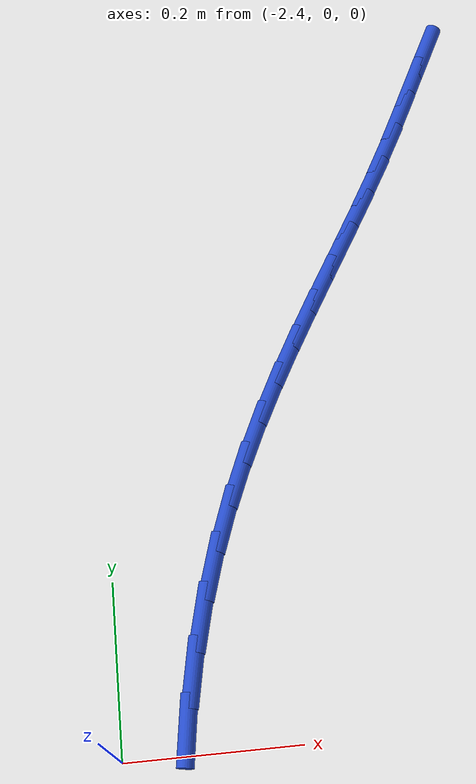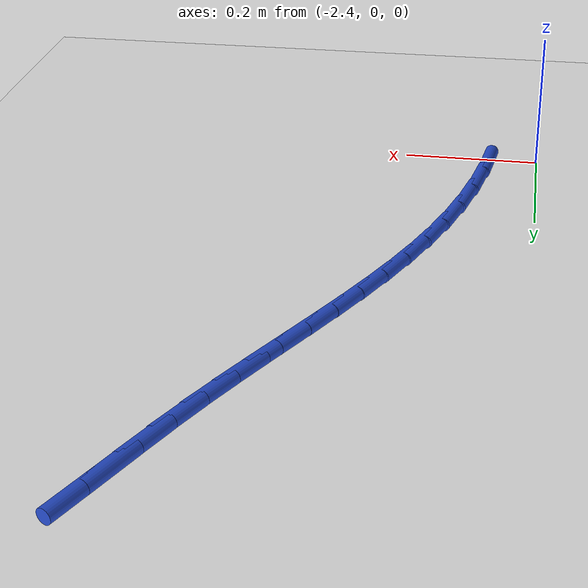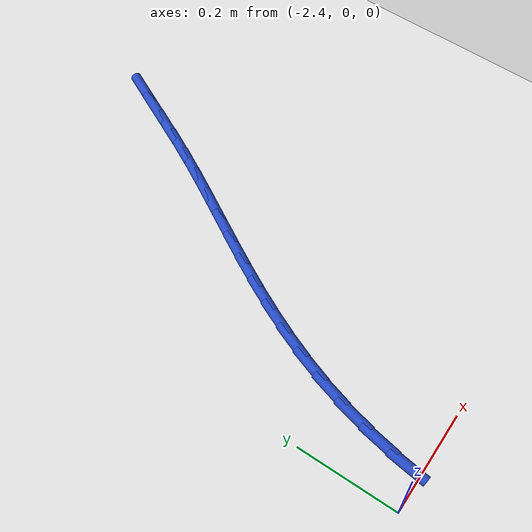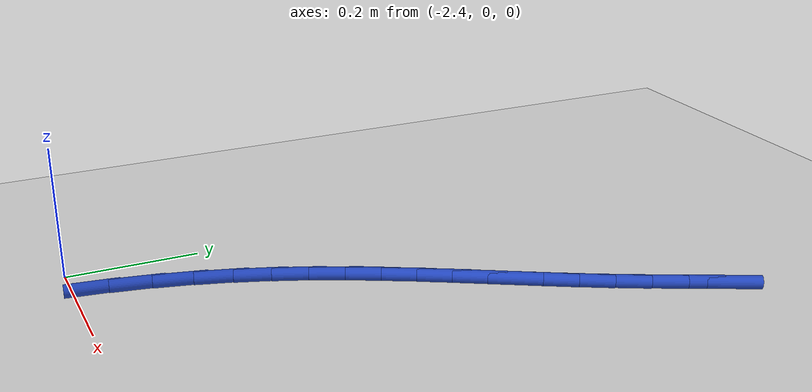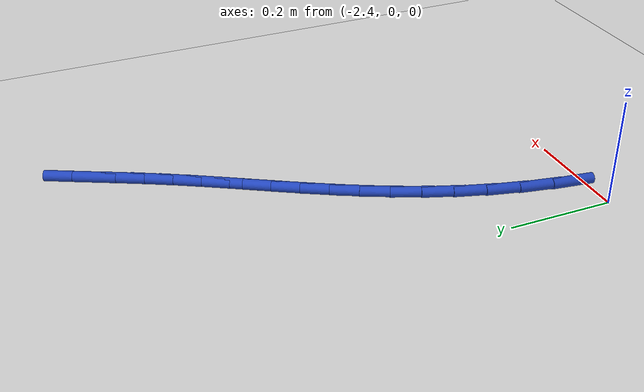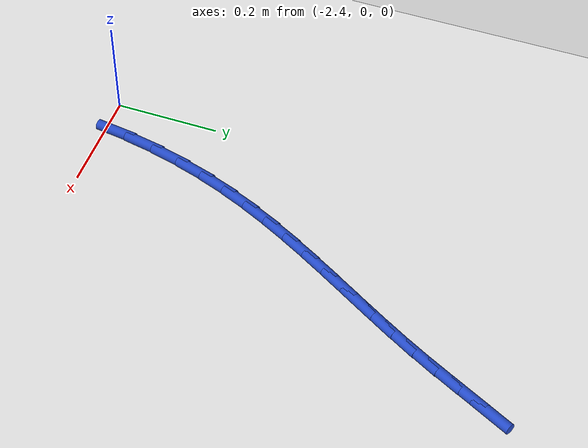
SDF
<sdf version="1.6">
 <world name="default">
  <model name="ground_plane">
   <static>1</static>
   <link name="link">
    <collision name="collision">
     <geometry><plane><normal>0 0 1</normal><size>100 100</size></plane></geometry>
     <surface><friction><ode><mu>100</mu><mu2>50</mu2></ode></friction></surface>
    </collision>
    <visual name="visual">
     <cast_shadows>0</cast_shadows>
     <geometry><plane><normal>0 0 1</normal><size>100 100</size></plane></geometry>
     <material>
      <script><uri>file://media/materials/scripts/gazebo.material</uri><name>Gazebo/WhiteGlow</name></script>
     </material>
    </visual>
   </link>
  </model>
  <model name="line">
   <link name="link_53">
    <pose>-1.951885829891804 0.8665344935591558 0.01 0 1.57 1.1134902627350924</pose>
    <collision name="collision">
     <geometry><cylinder><radius>0.01</radius><length>0.08</length></cylinder></geometry>
    </collision>
    <visual name="visual">
     <material>
      <script><name>Gazebo/Blue</name><uri>file://media/materials/scripts/gazebo.material</uri></script>
     </material>
     <geometry><cylinder><radius>0.01</radius><length>0.08</length></cylinder></geometry>
    </visual>
   </link>
   <link name="link_54">
    <pose>-1.9754103205397266 0.8187300119845221 0.01 0 1.57 1.1170671915449875</pose>
    <collision name="collision">
     <geometry><cylinder><radius>0.01</radius><length>0.08</length></cylinder></geometry>
    </collision>
    <visual name="visual">
     <material>
      <script><name>Gazebo/Blue</name><uri>file://media/materials/scripts/gazebo.material</uri></script>
     </material>
     <geometry><cylinder><radius>0.01</radius><length>0.08</length></cylinder></geometry>
    </visual>
   </link>
   <link name="link_55">
    <pose>-1.9986185281457824 0.7711393140914072 0.01 0 1.57 1.1071290461043983</pose>
    <collision name="collision">
     <geometry><cylinder><radius>0.01</radius><length>0.08</length></cylinder></geometry>
    </collision>
    <visual name="visual">
     <material>
      <script><name>Gazebo/Blue</name><uri>file://media/materials/scripts/gazebo.material</uri></script>
     </material>
     <geometry><cylinder><radius>0.01</radius><length>0.08</length></cylinder></geometry>
    </visual>
   </link>
   <link name="link_56">
    <pose>-2.02211542218024 0.7241478370496097 0.01 0 1.57 1.0846794115029847</pose>
    <collision name="collision">
     <geometry><cylinder><radius>0.01</radius><length>0.08</length></cylinder></geometry>
    </collision>
    <visual name="visual">
     <material>
      <script><name>Gazebo/Blue</name><uri>file://media/materials/scripts/gazebo.material</uri></script>
     </material>
     <geometry><cylinder><radius>0.01</radius><length>0.08</length></cylinder></geometry>
    </visual>
   </link>
   <link name="link_57">
    <pose>-2.046449963591491 0.6780955028823921 0.01 0 1.57 1.062806701525071</pose>
    <collision name="collision">
     <geometry><cylinder><radius>0.01</radius><length>0.08</length></cylinder></geometry>
    </collision>
    <visual name="visual">
     <material>
      <script><name>Gazebo/Blue</name><uri>file://media/materials/scripts/gazebo.material</uri></script>
     </material>
     <geometry><cylinder><radius>0.01</radius><length>0.08</length></cylinder></geometry>
    </visual>
   </link>
   <link name="link_58">
    <pose>-2.0716238381366034 0.6328774921755836 0.01 0 1.57 1.0492954950425308</pose>
    <collision name="collision">
     <geometry><cylinder><radius>0.01</radius><length>0.08</length></cylinder></geometry>
    </collision>
    <visual name="visual">
     <material>
      <script><name>Gazebo/Blue</name><uri>file://media/materials/scripts/gazebo.material</uri></script>
     </material>
     <geometry><cylinder><radius>0.01</radius><length>0.08</length></cylinder></geometry>
    </visual>
   </link>
   <link name="link_59">
    <pose>-2.0973294166298495 0.5881376217140197 0.01 0 1.57 1.0444396385903945</pose>
    <collision name="collision">
     <geometry><cylinder><radius>0.01</radius><length>0.08</length></cylinder></geometry>
    </collision>
    <visual name="visual">
     <material>
      <script><name>Gazebo/Blue</name><uri>file://media/materials/scripts/gazebo.material</uri></script>
     </material>
     <geometry><cylinder><radius>0.01</radius><length>0.08</length></cylinder></geometry>
    </visual>
   </link>
   <link name="link_60">
    <pose>-2.123255566833727 0.5435168615386952 0.01 0 1.57 1.0482805100394543</pose>
    <collision name="collision">
     <geometry><cylinder><radius>0.01</radius><length>0.08</length></cylinder></geometry>
    </collision>
    <visual name="visual">
     <material>
      <script><name>Gazebo/Blue</name><uri>file://media/materials/scripts/gazebo.material</uri></script>
     </material>
     <geometry><cylinder><radius>0.01</radius><length>0.08</length></cylinder></geometry>
    </visual>
   </link>
   <link name="link_61">
    <pose>-2.1490911565107336 0.4986561816906031 0.01 0 1.57 1.060701548714605</pose>
    <collision name="collision">
     <geometry><cylinder><radius>0.01</radius><length>0.08</length></cylinder></geometry>
    </collision>
    <visual name="visual">
     <material>
      <script><name>Gazebo/Blue</name><uri>file://media/materials/scripts/gazebo.material</uri></script>
     </material>
     <geometry><cylinder><radius>0.01</radius><length>0.08</length></cylinder></geometry>
    </visual>
   </link>
   <link name="link_62">
    <pose>-2.174525053423368 0.45319655221073885 0.01 0 1.57 1.0814259967850304</pose>
    <collision name="collision">
     <geometry><cylinder><radius>0.01</radius><length>0.08</length></cylinder></geometry>
    </collision>
    <visual name="visual">
     <material>
      <script><name>Gazebo/Blue</name><uri>file://media/materials/scripts/gazebo.material</uri></script>
     </material>
     <geometry><cylinder><radius>0.01</radius><length>0.08</length></cylinder></geometry>
    </visual>
   </link>
   <link name="link_63">
    <pose>-2.1992461253341293 0.4067789431400957 0.01 0 1.57 1.1100051310889332</pose>
    <collision name="collision">
     <geometry><cylinder><radius>0.01</radius><length>0.08</length></cylinder></geometry>
    </collision>
    <visual name="visual">
     <material>
      <script><name>Gazebo/Blue</name><uri>file://media/materials/scripts/gazebo.material</uri></script>
     </material>
     <geometry><cylinder><radius>0.01</radius><length>0.08</length></cylinder></geometry>
    </visual>
   </link>
   <link name="link_64">
    <pose>-2.2229432400055145 0.35904432451966856 0.01 0 1.57 1.1458031505140482</pose>
    <collision name="collision">
     <geometry><cylinder><radius>0.01</radius><length>0.08</length></cylinder></geometry>
    </collision>
    <visual name="visual">
     <material>
      <script><name>Gazebo/Blue</name><uri>file://media/materials/scripts/gazebo.material</uri></script>
     </material>
     <geometry><cylinder><radius>0.01</radius><length>0.08</length></cylinder></geometry>
    </visual>
   </link>
   <link name="link_65">
    <pose>-2.245305265200024 0.3096336663904515 0.01 0 1.57 1.1879877986477299</pose>
    <collision name="collision">
     <geometry><cylinder><radius>0.01</radius><length>0.08</length></cylinder></geometry>
    </collision>
    <visual name="visual">
     <material>
      <script><name>Gazebo/Blue</name><uri>file://media/materials/scripts/gazebo.material</uri></script>
     </material>
     <geometry><cylinder><radius>0.01</radius><length>0.08</length></cylinder></geometry>
    </visual>
   </link>
   <link name="link_66">
    <pose>-2.2660210686801543 0.25818793879343815 0.01 0 1.57 1.2355367788353941</pose>
    <collision name="collision">
     <geometry><cylinder><radius>0.01</radius><length>0.08</length></cylinder></geometry>
    </collision>
    <visual name="visual">
     <material>
      <script><name>Gazebo/Blue</name><uri>file://media/materials/scripts/gazebo.material</uri></script>
     </material>
     <geometry><cylinder><radius>0.01</radius><length>0.08</length></cylinder></geometry>
    </visual>
   </link>
   <link name="link_67">
    <pose>-2.2847795182084045 0.20434811176962364 0.01 0 1.57 1.2872676983842066</pose>
    <collision name="collision">
     <geometry><cylinder><radius>0.01</radius><length>0.08</length></cylinder></geometry>
    </collision>
    <visual name="visual">
     <material>
      <script><name>Gazebo/Blue</name><uri>file://media/materials/scripts/gazebo.material</uri></script>
     </material>
     <geometry><cylinder><radius>0.01</radius><length>0.08</length></cylinder></geometry>
    </visual>
   </link>
   <link name="link_68">
    <pose>-2.301269486821531 0.14775518674799767 0.01 0 1.57 1.3406039720567804</pose>
    <collision name="collision">
     <geometry><cylinder><radius>0.01</radius><length>0.08</length></cylinder></geometry>
    </collision>
    <visual name="visual">
     <material>
      <script><name>Gazebo/Blue</name><uri>file://media/materials/scripts/gazebo.material</uri></script>
     </material>
     <geometry><cylinder><radius>0.01</radius><length>0.08</length></cylinder></geometry>
    </visual>
   </link>
   <link name="link_69">
    <pose>-2.3152137936498396 0.08825218409228722 0.01 0 1.57 1.3911987332797644</pose>
    <collision name="collision">
     <geometry><cylinder><radius>0.01</radius><length>0.08</length></cylinder></geometry>
    </collision>
    <visual name="visual">
     <material>
      <script><name>Gazebo/Blue</name><uri>file://media/materials/scripts/gazebo.material</uri></script>
     </material>
     <geometry><cylinder><radius>0.01</radius><length>0.08</length></cylinder></geometry>
    </visual>
   </link>
   <link name="link_70">
    <pose>-2.3264498334557264 0.026363983099624313 0.01 0 1.57 1.4396558018372605</pose>
    <collision name="collision">
     <geometry><cylinder><radius>0.01</radius><length>0.08</length></cylinder></geometry>
    </collision>
    <visual name="visual">
     <material>
      <script><name>Gazebo/Blue</name><uri>file://media/materials/scripts/gazebo.material</uri></script>
     </material>
     <geometry><cylinder><radius>0.01</radius><length>0.08</length></cylinder></geometry>
    </visual>
   </link>
  </model>
 </world>
</sdf>
